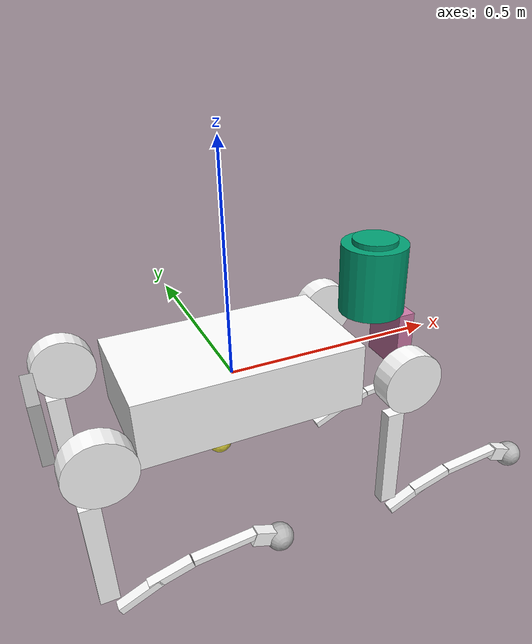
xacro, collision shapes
<?xml version="1.0"?>

<robot name="b2_description" xmlns:xacro="http://www.ros.org/wiki/xacro">

    <xacro:include filename="$(find b2_description)/xacro/gazebo_tf.xacro"/>
    <xacro:include filename="$(find b2_description)/urdf/b2_description.urdf"/>

    <xacro:include filename="$(find velodyne_description)/urdf/VLP-16.urdf.xacro" />
    <xacro:VLP-16 parent="vlp16_link" name="vlp16" tf_prefix="" topic="/velodyne_points" organize_cloud="false" hz="10" lasers="16" samples="1000" collision_range="0.3" min_range="0.9" max_range="30.0" noise="0.008" min_angle="-${M_PI}" max_angle="${M_PI}" gpu="true">
        <origin xyz="0.0 0.0 0.0" rpy="0 0 0"/>
    </xacro:VLP-16>
    <!-- Rotor related joint and link is only for demonstrate location. -->
    <!-- Actually, the rotor will rotate and the joint is not fixed. Reduction ratio should be considered. -->

</robot>

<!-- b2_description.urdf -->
<robot name="b2_description">
  <link name="base_link">
    <visual>
      <origin xyz="0 0 0" rpy="0 0 0" />
      <geometry>
        <box size="0.001 0.001 0.001"/>
      </geometry>
    </visual>
  </link>
  <joint name="floating_base" type="fixed">
    <origin rpy="0 0 0" xyz="0 0 0"/>
    <parent link="base_link"/>
    <child link="trunk"/>
  </joint>
  <link name="trunk">
    <inertial>
      <origin xyz="0.000458 0.005261 0.000665" rpy="0 0 0" />
      <mass value="35.86" />
      <inertia ixx="0.27466" ixy="-0.000622" ixz="0.00315" iyy="1.0618" iyz="-0.00139" izz="1.1825" />
    </inertial>
    <visual>
      <origin xyz="0 0 0" rpy="0 0 0" />
      <geometry>
        <mesh filename="package://b2_description/meshes/trunk2.dae" />
      </geometry>
      <material name="">
        <color rgba="1 1 1 1" />
      </material>
    </visual>
    <collision>
      <origin rpy="0 0 0" xyz="0 0 0" />
      <geometry>
        <box size="0.5 0.28 0.15" />
      </geometry>
    </collision>
  </link>
  <link name="vlp16_link">
    <inertial>
      <origin xyz="0.34918 0 0.17851" rpy="0 0 0" />
      <mass value="4.19E-15" />
      <inertia ixx="1.68E-27" ixy="-3.2E-45" ixz="7.68E-44" iyy="1.68E-27" iyz="-9.26E-47" izz="1.68E-27" />
    </inertial>
    <visual>
      <origin xyz="0 0 0" rpy="0 0 0" />
      <geometry>
        <mesh filename="file://$(find velodyne_description)/meshes/VLP16_scan.dae"/>
      </geometry>
    </visual>
    <collision>
      <origin xyz="0 0 -0.02" rpy="0 0 0" />
      <geometry>
        <cylinder length="0.16" radius="0.076" />
      </geometry>
    </collision>
  </link>
  <joint name="vlp16_mount_joint" type="fixed">
    <origin xyz="0.34918 0 0.17851" rpy="0 0 0" />
    <parent link="base_link" />
    <child link="vlp16_link" />
    <axis xyz="0 0 0" />
  </joint>
  <link name="f_dc_link">
    <inertial>
      <origin xyz="3.47E-18 0 5.55E-17" rpy="0 0 0" />
      <mass value="4.19E-15" />
      <inertia ixx="1.68E-27" ixy="-9.81E-45" ixz="-2.54E-44" iyy="1.68E-27" iyz="0" izz="1.68E-27" />
    </inertial>
  </link>
  <joint name="f_dc_joint" type="fixed">
    <origin xyz="0.41251 0.024997 0.04765" rpy="-2.3562 0 -1.5708" />
    <parent link="base_link" />
    <child link="f_dc_link" />
    <axis xyz="0 0 0" />
  </joint>
  <link name="r_dc_link">
    <inertial>
      <origin xyz="-7.46E-16 -3.33E-16 -1.11E-15" rpy="0 0 0" />
      <mass value="4.19E-15" />
      <inertia ixx="1.68E-27" ixy="-4.31E-44" ixz="2.48E-45" iyy="1.68E-27" iyz="0" izz="1.68E-27" />
    </inertial>
  </link>
  <joint name="r_dc_joint" type="fixed">
    <origin xyz="-0.4081 -0.025 0.024861" rpy="-2.3557 0 1.5708" />
    <parent link="base_link" />
    <child link="r_dc_link" />
    <axis xyz="0 0 0" />
  </joint>
  <link name="imu_link">
    <inertial>
      <origin xyz="-2.02E-17 1.73E-17 -1.39E-17" rpy="0 0 0" />
      <mass value="4.19E-15" />
      <inertia ixx="1.68E-27" ixy="1.84E-44" ixz="-7.35E-44" iyy="1.68E-27" iyz="-3.67E-44" izz="1.68E-27" />
    </inertial>
  </link>
  <joint name="imu_joint" type="fixed">
    <origin xyz="0 -0.02341 0.04927" rpy="0 0 0" />
    <parent link="base_link" />
    <child link="imu_link" />
    <axis xyz="0 0 0" />
  </joint>
  <link name="head_Link">
    <inertial>
      <origin xyz="0.33989 -0.000168 0.12029" rpy="0 0 0" />
      <mass value="3.6885" />
      <inertia ixx="0.026455" ixy="3.15E-05" ixz="0.00166" iyy="0.029221" iyz="-3.27E-05" izz="0.010918" />
    </inertial>
    <collision>
      <origin xyz="0.41 0 0.005" rpy="0 0 0" />
      <geometry>
        <box size="0.04 0.12 0.14" />
      </geometry>
    </collision>
  </link>
  <joint name="head_joint" type="fixed">
    <origin xyz="0 0 0" rpy="0 0 0" />
    <parent link="trunk" />
    <child link="head_Link" />
    <axis xyz="0 0 0" />
  </joint>
  <link name="tail_link">
    <inertial>
      <origin xyz="-0.37448 0.000488 0.006495" rpy="0 0 0" />
      <mass value="0.795" />
      <inertia ixx="0.0028118" ixy="1.95E-05" ixz="-7.87E-06" iyy="0.0047506" iyz="-1.57E-05" izz="0.0029154" />
    </inertial>
    <collision>
      <origin xyz="-0.405 0 0.005" rpy="0 0 0" />
      <geometry>
        <box size="0.025 0.12 0.14" />
      </geometry>
    </collision>
  </link>
  <joint name="tail_joint" type="fixed">
    <origin xyz="0 0 0" rpy="0 0 0" />
    <parent link="trunk" />
    <child link="tail_link" />
    <axis xyz="0 0 0" />
  </joint>
  <link name="FL_hip">
    <inertial>
      <origin xyz="-0.003841 -0.009068 0" rpy="0 0 0" />
      <mass value="2.673" />
      <inertia ixx="0.0033188" ixy="7.16E-05" ixz="-3.77E-07" iyy="0.0048743" iyz="4E-09" izz="0.0037087" />
    </inertial>
    <visual>
      <origin xyz="0 0 0" rpy="0 0 0" />
      <geometry>
        <mesh filename="package://b2_description/meshes/FL_hip.dae" />
      </geometry>
      <material name="">
        <color rgba="1 1 1 1" />
      </material>
    </visual>
    <collision>
      <origin xyz="0 0.12 0" rpy="1.5707963267948966 0 0" />
      <geometry>
        <cylinder length="0.05" radius="0.07" />
      </geometry>
    </collision>
  </link>
  <joint name="FL_hip_joint" type="revolute">
    <origin xyz="0.3285 0.072 0" rpy="0 0 0" />
    <parent link="trunk" />
    <child link="FL_hip" />
    <axis xyz="1 0 0" />
    <limit lower="-0.87" upper="0.87" effort="200" velocity="23" />
  </joint>
  <link name="FL_thigh">
    <inertial>
      <origin xyz="-0.006279 -0.032049 -0.057835" rpy="0 0 0" />
      <mass value="4.536" />
      <inertia ixx="0.062299" ixy="0.00087781" ixz="-0.0036475" iyy="0.061399" iyz="0.0083537" izz="0.0081997" />
    </inertial>
    <visual>
      <origin xyz="0 0 0" rpy="0 0 0" />
      <geometry>
        <mesh filename="package://b2_description/meshes/FL_thigh.dae" />
      </geometry>
      <material name="">
        <color rgba="1 1 1 1" />
      </material>
    </visual>
    <collision>
      <origin xyz="-0.025 0 -0.16" rpy="0 1.57 0" />
      <geometry>
        <box size="0.32 0.0445 0.054" />
      </geometry>
    </collision>
  </link>
  <joint name="FL_thigh_joint" type="revolute">
    <origin xyz="0 0.11973 0" rpy="0 0 0" />
    <parent link="FL_hip" />
    <child link="FL_thigh" />
    <axis xyz="0 1 0" />
    <limit lower="-0.94" upper="4.69" effort="200" velocity="23" />
  </joint>
  <link name="FL_calf">
    <inertial>
      <origin xyz="0.012422 0 -0.12499" rpy="0 0 0" />
      <mass value="0.404" />
      <inertia ixx="0.01143" ixy="0" ixz="0.000643" iyy="0.011534" iyz="0" izz="0.000331" />
    </inertial>
    <visual>
      <origin xyz="0 0 0" rpy="0 0 0" />
      <geometry>
        <mesh filename="package://b2_description/meshes/FL_calf.dae" />
      </geometry>
      <material name="">
        <color rgba="1 1 1 1" />
      </material>
    </visual>
    <collision>
      <origin rpy="0 1.2 0" xyz="-0.002 0 -0.03" />
      <geometry>
        <box size="0.1 0.0245 0.018" />
      </geometry>
    </collision>
    <collision>
      <origin rpy="0 1.35 0" xyz="0.022 0 -0.1" />
      <geometry>
        <box size="0.1 0.0245 0.018" />
      </geometry>
    </collision>
    <collision>
      <origin rpy="0 1.53 0" xyz="0.036 0 -0.225" />
      <geometry>
        <box size="0.15 0.0245 0.015" />
      </geometry>
    </collision>
    <collision>
      <origin rpy="0 2 0" xyz="0.023 0 -0.31" />
      <geometry>
        <box size="0.05 0.028 0.035" />
      </geometry>
    </collision>
  </link>
  <joint name="FL_calf_joint" type="revolute">
    <origin xyz="0 -8.6984E-05 -0.35" rpy="0 0 0" />
    <parent link="FL_thigh" />
    <child link="FL_calf" />
    <axis xyz="0 1 0" />
    <limit lower="-2.82" upper="-0.43" effort="320" velocity="14" />
  </joint>
  <link name="FL_foot">
    <inertial>
      <origin xyz="-0.006511 0 -0.010144" rpy="0 0 0" />
      <mass value="0.126" />
      <inertia ixx="3.8E-05" ixy="0" ixz="1.1E-05" iyy="4.1E-05" iyz="0" izz="4.2E-05" />
    </inertial>
    <collision>
      <origin xyz="0 0 0" rpy="1.57 0 0" />
      <geometry>
        <sphere radius="0.032" />
      </geometry>
    </collision>
  </link>
  <joint name="FL_foot_joint" type="fixed" dont_collapse="true">
    <origin xyz="0 0 -0.35" rpy="0 0 0" />
    <parent link="FL_calf" />
    <child link="FL_foot" />
  </joint>
  <link name="FR_hip">
    <inertial>
      <origin xyz="-0.009305 0.010228 0.000264" rpy="0 0 0" />
      <mass value="2.673" />
      <inertia ixx="0.0026431" ixy="-0.00019234" ixz="-6.76E-06" iyy="0.0046728" iyz="7.16E-06" izz="0.0034208" />
    </inertial>
    <visual>
      <origin xyz="0 0 0" rpy="0 0 0" />
      <geometry>
        <mesh filename="package://b2_description/meshes/FR_hip.dae" />
      </geometry>
      <material name="">
        <color rgba="1 1 1 1" />
      </material>
    </visual>
    <collision>
      <origin xyz="0 -0.12 0" rpy="1.5707963267948966 0 0" />
      <geometry>
        <cylinder length="0.05" radius="0.07" />
      </geometry>
    </collision>
  </link>
  <joint name="FR_hip_joint" type="revolute">
    <origin xyz="0.3285 -0.072 0" rpy="0 0 0" />
    <parent link="trunk" />
    <child link="FR_hip" />
    <axis xyz="1 0 0" />
    <limit lower="-0.87" upper="0.87" effort="200" velocity="23" />
  </joint>
  <link name="FR_thigh">
    <inertial>
      <origin xyz="-0.006279 0.032049 -0.057835" rpy="0 0 0" />
      <mass value="4.536" />
      <inertia ixx="0.06229908" ixy="-0.000877808" ixz="-0.003647464" iyy="0.06139927" iyz="-0.008353671" izz="0.008199745" />
    </inertial>
    <visual>
      <origin xyz="0 0 0" rpy="0 0 0" />
      <geometry>
        <mesh filename="package://b2_description/meshes/FR_thigh.dae" />
      </geometry>
      <material name="">
        <color rgba="1 1 1 1" />
      </material>
    </visual>
    <collision>
      <origin rpy="0 1.57 0" xyz="-0.03 0 -0.2" />
      <geometry>
        <box size="0.25 0.028 0.04" />
      </geometry>
    </collision>
  </link>
  <joint name="FR_thigh_joint" type="revolute">
    <origin xyz="0 -0.11973 0" rpy="0 0 0" />
    <parent link="FR_hip" />
    <child link="FR_thigh" />
    <axis xyz="0 1 0" />
    <limit lower="-0.94" upper="4.69" effort="200" velocity="23" />
  </joint>
  <link name="FR_calf">
    <inertial>
      <origin xyz="0.012422 0 -0.12499" rpy="0 0 0" />
      <mass value="0.404" />
      <inertia ixx="0.01143" ixy="0" ixz="0.000643" iyy="0.011534" iyz="0" izz="0.000331" />
    </inertial>
    <visual>
      <origin xyz="0 0 0" rpy="0 0 0" />
      <geometry>
        <mesh filename="package://b2_description/meshes/FR_calf.dae" />
      </geometry>
      <material name="">
        <color rgba="1 1 1 1" />
      </material>
    </visual>
    <collision>
      <origin rpy="0 1.2 0" xyz="-0.002 0 -0.03" />
      <geometry>
        <box size="0.1 0.0245 0.018" />
      </geometry>
    </collision>
    <collision>
      <origin rpy="0 1.35 0" xyz="0.022 0 -0.1" />
      <geometry>
        <box size="0.1 0.0245 0.018" />
      </geometry>
    </collision>
    <collision>
      <origin rpy="0 1.53 0" xyz="0.036 0 -0.225" />
      <geometry>
        <box size="0.15 0.0245 0.015" />
      </geometry>
    </collision>
    <collision>
      <origin rpy="0 2 0" xyz="0.023 0 -0.31" />
      <geometry>
        <box size="0.05 0.028 0.035" />
      </geometry>
    </collision>
  </link>
  <joint name="FR_calf_joint" type="revolute">
    <origin xyz="0 8.6986E-05 -0.35" rpy="0 0 0" />
    <parent link="FR_thigh" />
    <child link="FR_calf" />
    <axis xyz="0 1 0" />
    <limit lower="-2.82" upper="-0.43" effort="320" velocity="14" />
  </joint>
  <link name="FR_foot">
    <inertial>
      <origin xyz="-0.006511 0 -0.010144" rpy="0 0 0" />
      <mass value="0.126" />
      <inertia ixx="3.8E-05" ixy="0" ixz="1.1E-05" iyy="4.1E-05" iyz="0" izz="4.2E-05" />
    </inertial>
    <collision>
      <origin xyz="0 0 0" rpy="1.57 0 0" />
      <geometry>
        <sphere radius="0.032" />
      </geometry>
    </collision>
  </link>
  <joint name="FR_foot_joint" type="fixed" dont_collapse="true">
    <origin xyz="0 0 -0.35" rpy="0 0 0" />
    <parent link="FR_calf" />
    <child link="FR_foot" />
  </joint>
  <link name="RL_hip">
    <inertial>
      <origin xyz="0.009305 -0.010228 0.000264" rpy="0 0 0" />
      <mass value="2.673" />
      <inertia ixx="0.0026431" ixy="-0.00019234" ixz="6.76E-06" iyy="0.0046728" iyz="-7.16E-06" izz="0.0034208" />
    </inertial>
    <visual>
      <origin xyz="0 0 0" rpy="0 0 0" />
      <geometry>
        <mesh filename="package://b2_description/meshes/RL_hip.dae" />
      </geometry>
      <material name="">
        <color rgba="1 1 1 1" />
      </material>
    </visual>
    <collision>
      <origin xyz="0 0.12 0" rpy="1.5707963267948966 0 0" />
      <geometry>
        <cylinder length="0.05" radius="0.07" />
      </geometry>
    </collision>
  </link>
  <joint name="RL_hip_joint" type="revolute">
    <origin xyz="-0.3285 0.072 0" rpy="0 0 0" />
    <parent link="trunk" />
    <child link="RL_hip" />
    <axis xyz="1 0 0" />
    <limit lower="-0.87" upper="0.87" effort="200" velocity="23" />
  </joint>
  <link name="RL_thigh">
    <inertial>
      <origin xyz="-0.006279 -0.032049 -0.057835" rpy="0 0 0" />
      <mass value="4.536" />
      <inertia ixx="0.06229908" ixy="0.000877808" ixz="-0.003647464" iyy="0.06139927" iyz="0.008353671" izz="0.008199745" />
    </inertial>
    <visual>
      <origin xyz="0 0 0" rpy="0 0 0" />
      <geometry>
        <mesh filename="package://b2_description/meshes/RL_thigh.dae" />
      </geometry>
      <material name="">
        <color rgba="1 1 1 1" />
      </material>
    </visual>
    <collision>
      <origin rpy="0 1.57 0" xyz="-0.03 0 -0.2" />
      <geometry>
        <box size="0.25 0.028 0.04" />
      </geometry>
    </collision>
  </link>
  <joint name="RL_thigh_joint" type="revolute">
    <origin xyz="0 0.11973 0" rpy="0 0 0" />
    <parent link="RL_hip" />
    <child link="RL_thigh" />
    <axis xyz="0 1 0" />
    <limit lower="-0.94" upper="4.69" effort="200" velocity="23" />
  </joint>
  <link name="RL_calf">
    <inertial>
      <origin xyz="0.012422 0 -0.12499" rpy="0 0 0" />
      <mass value="0.404" />
      <inertia ixx="0.01143" ixy="0" ixz="0.000643" iyy="0.011534" iyz="0" izz="0.000331" />
    </inertial>
    <visual>
      <origin xyz="0 0 0" rpy="0 0 0" />
      <geometry>
        <mesh filename="package://b2_description/meshes/RL_calf.dae" />
      </geometry>
      <material name="">
        <color rgba="1 1 1 1" />
      </material>
    </visual>
    <collision>
      <origin rpy="0 1.2 0" xyz="-0.002 0 -0.03" />
      <geometry>
        <box size="0.1 0.0245 0.018" />
      </geometry>
    </collision>
    <collision>
      <origin rpy="0 1.35 0" xyz="0.022 0 -0.1" />
      <geometry>
        <box size="0.1 0.0245 0.018" />
      </geometry>
    </collision>
    <collision>
      <origin rpy="0 1.53 0" xyz="0.036 0 -0.225" />
      <geometry>
        <box size="0.15 0.0245 0.015" />
      </geometry>
    </collision>
    <collision>
      <origin rpy="0 2 0" xyz="0.023 0 -0.31" />
      <geometry>
        <box size="0.05 0.028 0.035" />
      </geometry>
    </collision>
  </link>
  <joint name="RL_calf_joint" type="revolute">
    <origin xyz="0 -8.6984E-05 -0.35" rpy="0 0 0" />
    <parent link="RL_thigh" />
    <child link="RL_calf" />
    <axis xyz="0 1 0" />
    <limit lower="-2.82" upper="-0.43" effort="320" velocity="14" />
  </joint>
  <link name="RL_foot">
    <inertial>
      <origin xyz="-0.006511 0 -0.010144" rpy="0 0 0" />
      <mass value="0.126" />
      <inertia ixx="3.8E-05" ixy="0" ixz="1.1E-05" iyy="4.1E-05" iyz="0" izz="4.2E-05" />
    </inertial>
    <collision>
      <origin xyz="0 0 0" rpy="1.57 0 0" />
      <geometry>
        <sphere radius="0.032" />
      </geometry>
    </collision>
  </link>
  <joint name="RL_foot_joint" type="fixed" dont_collapse="true">
    <origin xyz="0 0 -0.35" rpy="0 0 0" />
    <parent link="RL_calf" />
    <child link="RL_foot" />
  </joint>
  <link name="RR_hip">
    <inertial>
      <origin xyz="0.003841 0.009068 0" rpy="0 0 0" />
      <mass value="2.673" />
      <inertia ixx="0.0033188" ixy="7.16E-05" ixz="3.77E-07" iyy="0.0048743" iyz="-4E-09" izz="0.0037087" />
    </inertial>
    <visual>
      <origin xyz="0 0 0" rpy="0 0 0" />
      <geometry>
        <mesh filename="package://b2_description/meshes/RR_hip.dae" />
      </geometry>
      <material name="">
        <color rgba="1 1 1 1" />
      </material>
    </visual>
    <collision>
      <origin xyz="0 -0.12 0" rpy="1.5707963267948966 0 0" />
      <geometry>
        <cylinder length="0.05" radius="0.07" />
      </geometry>
    </collision>
  </link>
  <joint name="RR_hip_joint" type="revolute">
    <origin xyz="-0.3285 -0.072 0" rpy="0 0 0" />
    <parent link="trunk" />
    <child link="RR_hip" />
    <axis xyz="1 0 0" />
    <limit lower="-0.87" upper="0.87" effort="200" velocity="23" />
  </joint>
  <link name="RR_thigh">
    <inertial>
      <origin xyz="-0.006279 0.032049 -0.057835" rpy="0 0 0" />
      <mass value="4.536" />
      <inertia ixx="0.062299" ixy="-0.00087781" ixz="-0.0036475" iyy="0.061399" iyz="-0.0083537" izz="0.0081997" />
    </inertial>
    <visual>
      <origin xyz="0 0 0" rpy="0 0 0" />
      <geometry>
        <mesh filename="package://b2_description/meshes/RR_thigh.dae" />
      </geometry>
      <material name="">
        <color rgba="1 1 1 1" />
      </material>
    </visual>
    <collision>
      <origin rpy="0 1.57 0" xyz="-0.03 0 -0.2" />
      <geometry>
        <box size="0.25 0.028 0.04" />
      </geometry>
    </collision>
  </link>
  <joint name="RR_thigh_joint" type="revolute">
    <origin xyz="0 -0.11973 0" rpy="0 0 0" />
    <parent link="RR_hip" />
    <child link="RR_thigh" />
    <axis xyz="0 1 0" />
    <limit lower="-0.94" upper="4.69" effort="200" velocity="23" />
  </joint>
  <link name="RR_calf">
    <inertial>
      <origin xyz="0.012422 0 -0.12499" rpy="0 0 0" />
      <mass value="0.404" />
      <inertia ixx="0.01143" ixy="0" ixz="0.000643" iyy="0.011534" iyz="0" izz="0.000331" />
    </inertial>
    <visual>
      <origin xyz="0 0 0" rpy="0 0 0" />
      <geometry>
        <mesh filename="package://b2_description/meshes/RR_calf.dae" />
      </geometry>
      <material name="">
        <color rgba="1 1 1 1" />
      </material>
    </visual>
    <collision>
      <origin rpy="0 1.2 0" xyz="-0.002 0 -0.03" />
      <geometry>
        <box size="0.1 0.0245 0.018" />
      </geometry>
    </collision>
    <collision>
      <origin rpy="0 1.35 0" xyz="0.022 0 -0.1" />
      <geometry>
        <box size="0.1 0.0245 0.018" />
      </geometry>
    </collision>
    <collision>
      <origin rpy="0 1.53 0" xyz="0.036 0 -0.225" />
      <geometry>
        <box size="0.15 0.0245 0.015" />
      </geometry>
    </collision>
    <collision>
      <origin rpy="0 2 0" xyz="0.023 0 -0.31" />
      <geometry>
        <box size="0.05 0.028 0.035" />
      </geometry>
    </collision>
  </link>
  <joint name="RR_calf_joint" type="revolute">
    <origin xyz="0 8.6986E-05 -0.35" rpy="0 0 0" />
    <parent link="RR_thigh" />
    <child link="RR_calf" />
    <axis xyz="0 1 0" />
    <limit lower="-2.82" upper="-0.43" effort="320" velocity="14" />
  </joint>
  <link name="RR_foot">
    <inertial>
      <origin xyz="-0.006511 0 -0.010144" rpy="0 0 0" />
      <mass value="0.126" />
      <inertia ixx="3.8E-05" ixy="0" ixz="1.1E-05" iyy="4.1E-05" iyz="0" izz="4.2E-05" />
    </inertial>
    <collision>
      <origin xyz="0 0 0" rpy="1.57 0 0" />
      <geometry>
        <sphere radius="0.032" />
      </geometry>
    </collision>
  </link>
  <joint name="RR_foot_joint" type="fixed" dont_collapse="true">
    <origin xyz="0 -8.6984E-05 -0.35" rpy="0 0 0" />
    <parent link="RR_calf" />
    <child link="RR_foot" />
  </joint>

  <link name="f_oc_link">
    <inertial>
      <origin xyz="-3.39E-15 1.46E-16 -6.11E-16" rpy="0 0 0" />
      <mass value="4.19E-15" />
      <inertia ixx="1.68E-27" ixy="-3.89E-44" ixz="5.04E-44" iyy="1.68E-27" iyz="2.81E-45" izz="1.68E-27" />
    </inertial>
  </link>
  <joint name="f_oc_joint" type="fixed">
    <origin xyz="0.39079 0 -0.013433" rpy="-1.5708 0 -1.5708" />
    <parent link="base_link" />
    <child link="f_oc_link" />
    <axis xyz="0 0 0" />
  </joint>
  <link name="r_oc_link">
    <inertial>
      <origin xyz="-0.39143 1.52E-07 -0.011961" rpy="0 0 0" />
      <mass value="4.19E-12" />
      <inertia ixx="1.68E-22" ixy="9.03E-39" ixz="0" iyy="1.68E-22" iyz="-1.2E-38" izz="1.68E-22" />
    </inertial>
  </link>
  <joint name="r_oc_joint" type="fixed">
    <origin xyz="-0.38451 0 -0.023249" rpy="-1.5708 0 1.5708" />
    <parent link="base_link" />
    <child link="r_oc_link" />
    <axis xyz="0 0 0" />
  </joint>

</robot>

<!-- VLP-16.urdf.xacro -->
<robot xmlns:xacro="http://www.ros.org/wiki/xacro" name="VLP-16">
  <xacro:property name="M_PI" value="3.1415926535897931" />
  <xacro:macro name="VLP-16" params="*origin parent:=base_link name:=velodyne tf_prefix:='' topic:=/velodyne_points organize_cloud:=false hz:=10 lasers:=16 samples:=1875 collision_range:=0.3 min_range:=0.9 max_range:=130.0 noise:=0.008 min_angle:=-${M_PI} max_angle:=${M_PI} gpu:=false">

    <joint name="${name}_base_mount_joint" type="fixed">
      <xacro:insert_block name="origin" />
      <parent link="${parent}"/>
      <child link="${name}_base_link"/>
    </joint>

    <link name="${name}_base_link">
      <inertial>
        <mass value="0.01"/>
        <origin xyz="0 0 0.03585"/>
        <inertia ixx="${(0.83 * (3.0*0.0516*0.0516 + 0.0717*0.0717)) / 12.0}" ixy="0" ixz="0"
          iyy="${(0.83 * (3.0*0.0516*0.0516 + 0.0717*0.0717)) / 12.0}" iyz="0"
          izz="${0.5 * 0.83 * (0.0516*0.0516)}"/>
      </inertial>
      <visual>
        <geometry>
          <mesh filename="package://velodyne_description/meshes/VLP16_base_1.dae" />
        </geometry>
      </visual>
      <visual>
        <geometry>
          <mesh filename="package://velodyne_description/meshes/VLP16_base_2.dae" />
        </geometry>
      </visual>
      <collision>
        <origin rpy="0 0 0" xyz="0 0 0.03585"/>
        <geometry>
          <cylinder radius="0.0516" length="0.0717"/>
        </geometry>
      </collision>
    </link>

    <joint name="${name}_base_scan_joint" type="fixed" >
      <origin xyz="0 0 0.0377" rpy="0 0 0" />
      <parent link="${name}_base_link" />
      <child link="${name}"/>
    </joint>

    <link name="${name}">
      <inertial>
        <mass value="0.01"/>
        <origin xyz="0 0 0"/>
        <inertia ixx="1e-7" ixy="0" ixz="0" iyy="1e-7" iyz="0" izz="1e-7"/>
      </inertial>
      <visual>
        <origin xyz="0 0 -0.0377" />
        <geometry>
          <mesh filename="package://velodyne_description/meshes/VLP16_scan.dae" />
        </geometry>
      </visual>
      <collision>
        <geometry>
          <sphere radius="0"/>
        </geometry>
      </collision>
    </link>

    <!-- Gazebo requires the velodyne_gazebo_plugins package -->
    <gazebo reference="${name}">
      <xacro:if value="${gpu}">
        <sensor type="gpu_ray" name="${name}-VLP16">
          <pose>0 0 0 0 0 0</pose>
          <visualize>false</visualize>
          <update_rate>${hz}</update_rate>
          <ray>
            <scan>
              <horizontal>
                <samples>${samples}</samples>
                <resolution>1</resolution>
                <min_angle>${min_angle}</min_angle>
                <max_angle>${max_angle}</max_angle>
              </horizontal>
              <vertical>
                <samples>${lasers}</samples>
                <resolution>1</resolution>
                <min_angle>-${15.0*M_PI/180.0}</min_angle>
                <max_angle>
                  ${15.0*M_PI/180.0}</max_angle>
              </vertical>
            </scan>
            <range>
              <min>${collision_range}</min>
              <max>${max_range+1}</max>
              <resolution>0.001</resolution>
            </range>
            <noise>
              <type>gaussian</type>
              <mean>0.0</mean>
              <stddev>0.0</stddev>
            </noise>
          </ray>
          <plugin name="gazebo_ros_laser_controller" filename="libgazebo_ros_velodyne_laser.so">
            <ros>
              <namespace>/${name}</namespace>
              <remapping>~/out:=${topic}</remapping>
            </ros>
            <tf_prefix>${tf_prefix}</tf_prefix>
            <frame_name>${name}</frame_name>
            <organize_cloud>${organize_cloud}</organize_cloud>
            <min_range>${min_range}</min_range>
            <max_range>${max_range}</max_range>
            <gaussian_noise>${noise}</gaussian_noise>
          </plugin>
        </sensor>
      </xacro:if>
      <xacro:unless value="${gpu}">
        <sensor type="ray" name="${name}-VLP16">
          <pose>0 0 0 0 0 0</pose>
          <visualize>false</visualize>
          <update_rate>${hz}</update_rate>
          <ray>
            <scan>
              <horizontal>
                <samples>${samples}</samples>
                <resolution>1</resolution>
                <min_angle>${min_angle}</min_angle>
                <max_angle>${max_angle}</max_angle>
              </horizontal>
              <vertical>
                <samples>${lasers}</samples>
                <resolution>1</resolution>
                <min_angle>-${15.0*M_PI/180.0}</min_angle>
                <max_angle> ${15.0*M_PI/180.0}</max_angle>
              </vertical>
            </scan>
            <range>
              <min>${collision_range}</min>
              <max>${max_range+1}</max>
              <resolution>0.001</resolution>
            </range>
            <noise>
              <type>gaussian</type>
              <mean>0.0</mean>
              <stddev>0.0</stddev>
            </noise>
          </ray>
          <plugin name="gazebo_ros_laser_controller" filename="libgazebo_ros_velodyne_laser.so">
            <ros>
              <namespace>/${name}</namespace>
              <remapping>~/out:=${topic}</remapping>
            </ros>
            <tf_prefix>${tf_prefix}</tf_prefix>
            <frame_name>${name}</frame_name>
            <organize_cloud>${organize_cloud}</organize_cloud>
            <min_range>${min_range}</min_range>
            <max_range>${max_range}</max_range>
            <gaussian_noise>${noise}</gaussian_noise>
          </plugin>
        </sensor>
      </xacro:unless>
    </gazebo>

  </xacro:macro>
</robot>
